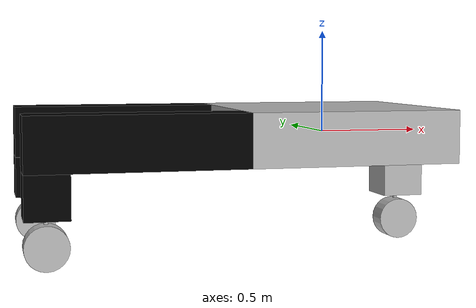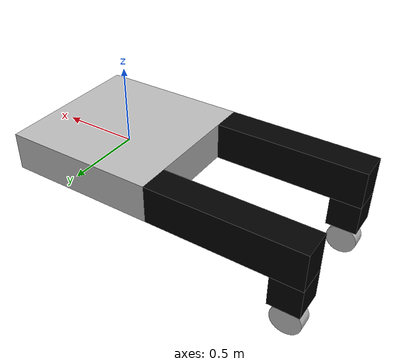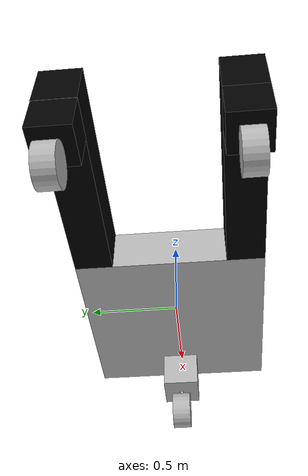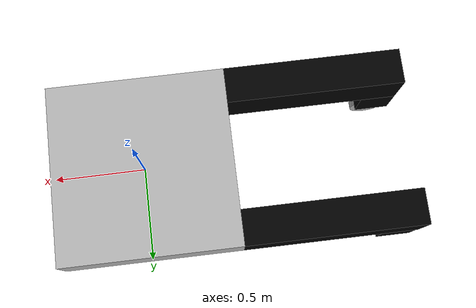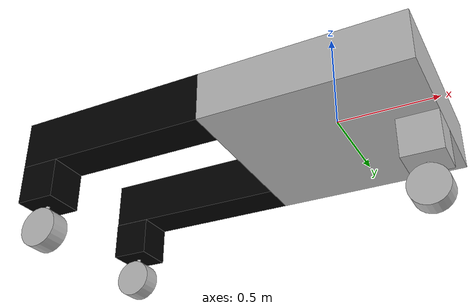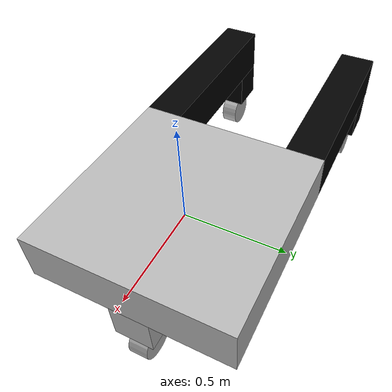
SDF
<?xml version='1.0'?>
<sdf version='1.6'>
  <model name='glide_robot'>
    <link name='link_0'>
      <inertial>
        <pose>0.266686 -9.7e-05 -0.187623 0 -0 0</pose>
        <mass>1.5</mass>
        <inertia>
          <ixx>0.508754</ixx>
          <ixy>1.97065e-05</ixy>
          <ixz>0.0375591</ixz>
          <iyy>0.562093</iyy>
          <iyz>-0.000183697</iyz>
          <izz>0.511676</izz>
        </inertia>
      </inertial>
      <self_collide>0</self_collide>
      <enable_wind>0</enable_wind>
      <kinematic>0</kinematic>
      <pose>0 0 0 0 -0 0</pose>
      <visual name='link_0_visual'>
        <pose>0 0 0 0 -0 0</pose>
        <geometry>
          <box>
            <size>1 1 0.25</size>
          </box>
        </geometry>
        <material>
          <shader type='pixel'/>
        </material>
        <transparency>0</transparency>
        <cast_shadows>1</cast_shadows>
      </visual>
      <visual name='link_0_fixed_joint_lump__link_1_clone_clone_clone_visual_1'>
        <pose>0.4 0 -0.225 0 -0 0</pose>
        <geometry>
          <box>
            <size>0.2 0.2 0.2</size>
          </box>
        </geometry>
        <material>
          <shader type='pixel'/>
        </material>
        <transparency>0</transparency>
        <cast_shadows>1</cast_shadows>
      </visual>
      <visual name='link_1_clone_visual_2'>
        <pose>0.400057 -0.000292 -0.33787 -0.007728 -0.001634 -0.023986</pose>
        <geometry>
          <cylinder>
            <length>0.025</length>
            <radius>0.01</radius>
          </cylinder>
        </geometry>
        <material>
          <shader type='pixel'/>
        </material>
        <transparency>0</transparency>
        <cast_shadows>1</cast_shadows>
      </visual>
      <collision name='link_0_collision'>
        <laser_retro>0</laser_retro>
        <max_contacts>10</max_contacts>
        <pose>0 0 0 0 -0 0</pose>
        <geometry>
          <box>
            <size>1 1 0.25</size>
          </box>
        </geometry>
        <surface>
          <friction>
            <ode>
              <mu>1</mu>
              <mu2>1</mu2>
              <fdir1>0 0 0</fdir1>
              <slip1>0</slip1>
              <slip2>0</slip2>
            </ode>
            <torsional>
              <coefficient>1</coefficient>
              <patch_radius>0</patch_radius>
              <surface_radius>0</surface_radius>
              <use_patch_radius>1</use_patch_radius>
              <ode>
                <slip>0</slip>
              </ode>
            </torsional>
          </friction>
          <bounce>
            <restitution_coefficient>0</restitution_coefficient>
            <threshold>1e+06</threshold>
          </bounce>
          <contact>
            <collide_without_contact>0</collide_without_contact>
            <collide_without_contact_bitmask>1</collide_without_contact_bitmask>
            <collide_bitmask>1</collide_bitmask>
            <ode>
              <soft_cfm>0</soft_cfm>
              <soft_erp>0.2</soft_erp>
              <kp>1e+13</kp>
              <kd>1</kd>
              <max_vel>0.01</max_vel>
              <min_depth>0</min_depth>
            </ode>
            <bullet>
              <split_impulse>1</split_impulse>
              <split_impulse_penetration_threshold>-0.01</split_impulse_penetration_threshold>
              <soft_cfm>0</soft_cfm>
              <soft_erp>0.2</soft_erp>
              <kp>1e+13</kp>
              <kd>1</kd>
            </bullet>
          </contact>
        </surface>
      </collision>
      <collision name='link_0_fixed_joint_lump__link_1_clone_clone_clone_collision_1'>
        <laser_retro>0</laser_retro>
        <max_contacts>10</max_contacts>
        <pose>0.4 0 -0.225 0 -0 0</pose>
        <geometry>
          <box>
            <size>0.2 0.2 0.2</size>
          </box>
        </geometry>
        <surface>
          <friction>
            <ode>
              <mu>1</mu>
              <mu2>1</mu2>
              <fdir1>0 0 0</fdir1>
              <slip1>0</slip1>
              <slip2>0</slip2>
            </ode>
            <torsional>
              <coefficient>1</coefficient>
              <patch_radius>0</patch_radius>
              <surface_radius>0</surface_radius>
              <use_patch_radius>1</use_patch_radius>
              <ode>
                <slip>0</slip>
              </ode>
            </torsional>
          </friction>
          <bounce>
            <restitution_coefficient>0</restitution_coefficient>
            <threshold>1e+06</threshold>
          </bounce>
          <contact>
            <collide_without_contact>0</collide_without_contact>
            <collide_without_contact_bitmask>1</collide_without_contact_bitmask>
            <collide_bitmask>1</collide_bitmask>
            <ode>
              <soft_cfm>0</soft_cfm>
              <soft_erp>0.2</soft_erp>
              <kp>1e+13</kp>
              <kd>1</kd>
              <max_vel>0.01</max_vel>
              <min_depth>0</min_depth>
            </ode>
            <bullet>
              <split_impulse>1</split_impulse>
              <split_impulse_penetration_threshold>-0.01</split_impulse_penetration_threshold>
              <soft_cfm>0</soft_cfm>
              <soft_erp>0.2</soft_erp>
              <kp>1e+13</kp>
              <kd>1</kd>
            </bullet>
          </contact>
        </surface>
      </collision>
      <collision name='link_1_clone_collision_2'>
        <laser_retro>0</laser_retro>
        <max_contacts>10</max_contacts>
        <pose>0.400057 -0.000292 -0.33787 -0.007728 -0.001634 -0.023986</pose>
        <geometry>
          <cylinder>
            <radius>0.01</radius>
            <length>0.025</length>
          </cylinder>
        </geometry>
        <surface>
          <friction>
            <ode>
              <mu>1</mu>
              <mu2>1</mu2>
              <fdir1>0 0 0</fdir1>
              <slip1>0</slip1>
              <slip2>0</slip2>
            </ode>
            <torsional>
              <coefficient>1</coefficient>
              <patch_radius>0</patch_radius>
              <surface_radius>0</surface_radius>
              <use_patch_radius>1</use_patch_radius>
              <ode>
                <slip>0</slip>
              </ode>
            </torsional>
          </friction>
          <bounce>
            <restitution_coefficient>0</restitution_coefficient>
            <threshold>1e+06</threshold>
          </bounce>
          <contact>
            <collide_without_contact>0</collide_without_contact>
            <collide_without_contact_bitmask>1</collide_without_contact_bitmask>
            <collide_bitmask>1</collide_bitmask>
            <ode>
              <soft_cfm>0</soft_cfm>
              <soft_erp>0.2</soft_erp>
              <kp>1e+13</kp>
              <kd>1</kd>
              <max_vel>0.01</max_vel>
              <min_depth>0</min_depth>
            </ode>
            <bullet>
              <split_impulse>1</split_impulse>
              <split_impulse_penetration_threshold>-0.01</split_impulse_penetration_threshold>
              <soft_cfm>0</soft_cfm>
              <soft_erp>0.2</soft_erp>
              <kp>1e+13</kp>
              <kd>1</kd>
            </bullet>
          </contact>
        </surface>
      </collision>
    </link>
    <link name='link_1'>
      <pose>-1.39995 -0.400292 -0.337839 -0.005156 -0.001069 -0.015992</pose>
      <inertial>
        <pose>0 0 0 0 -0 0</pose>
        <mass>0.5</mass>
        <inertia>
          <ixx>0.145833</ixx>
          <ixy>0</ixy>
          <ixz>0</ixz>
          <iyy>0.145833</iyy>
          <iyz>0</iyz>
          <izz>0.125</izz>
        </inertia>
      </inertial>
      <self_collide>0</self_collide>
      <enable_wind>0</enable_wind>
      <kinematic>0</kinematic>
      <visual name='link_1_visual'>
        <pose>0 0 0 0 -0 0</pose>
        <geometry>
          <cylinder>
            <length>0.025</length>
            <radius>0.01</radius>
          </cylinder>
        </geometry>
        <material>
          <shader type='pixel'/>
        </material>
        <transparency>0</transparency>
        <cast_shadows>1</cast_shadows>
      </visual>
      <collision name='link_1_collision'>
        <laser_retro>0</laser_retro>
        <max_contacts>10</max_contacts>
        <pose>0 0 0 0 -0 0</pose>
        <geometry>
          <cylinder>
            <radius>0.01</radius>
            <length>0.025</length>
          </cylinder>
        </geometry>
        <surface>
          <friction>
            <ode>
              <mu>1</mu>
              <mu2>1</mu2>
              <fdir1>0 0 0</fdir1>
              <slip1>0</slip1>
              <slip2>0</slip2>
            </ode>
            <torsional>
              <coefficient>1</coefficient>
              <patch_radius>0</patch_radius>
              <surface_radius>0</surface_radius>
              <use_patch_radius>1</use_patch_radius>
              <ode>
                <slip>0</slip>
              </ode>
            </torsional>
          </friction>
          <bounce>
            <restitution_coefficient>0</restitution_coefficient>
            <threshold>1e+06</threshold>
          </bounce>
          <contact>
            <collide_without_contact>0</collide_without_contact>
            <collide_without_contact_bitmask>1</collide_without_contact_bitmask>
            <collide_bitmask>1</collide_bitmask>
            <ode>
              <soft_cfm>0</soft_cfm>
              <soft_erp>0.2</soft_erp>
              <kp>1e+13</kp>
              <kd>1</kd>
              <max_vel>0.01</max_vel>
              <min_depth>0</min_depth>
            </ode>
            <bullet>
              <split_impulse>1</split_impulse>
              <split_impulse_penetration_threshold>-0.01</split_impulse_penetration_threshold>
              <soft_cfm>0</soft_cfm>
              <soft_erp>0.2</soft_erp>
              <kp>1e+13</kp>
              <kd>1</kd>
            </bullet>
          </contact>
        </surface>
      </collision>
    </link>
    <link name='link_2'>
      <pose>-1.39994 0.397228 -0.339814 -0.005156 -0.001069 -0.015992</pose>
      <inertial>
        <pose>0 0 0 0 -0 0</pose>
        <mass>0.5</mass>
        <inertia>
          <ixx>0.145833</ixx>
          <ixy>0</ixy>
          <ixz>0</ixz>
          <iyy>0.145833</iyy>
          <iyz>0</iyz>
          <izz>0.125</izz>
        </inertia>
      </inertial>
      <self_collide>0</self_collide>
      <enable_wind>0</enable_wind>
      <kinematic>0</kinematic>
      <visual name='link_2_visual'>
        <pose>0 0 0 0 -0 0</pose>
        <geometry>
          <cylinder>
            <length>0.025</length>
            <radius>0.01</radius>
          </cylinder>
        </geometry>
        <material>
          <shader type='pixel'/>
        </material>
        <transparency>0</transparency>
        <cast_shadows>1</cast_shadows>
      </visual>
      <collision name='link_2_collision'>
        <laser_retro>0</laser_retro>
        <max_contacts>10</max_contacts>
        <pose>0 0 0 0 -0 0</pose>
        <geometry>
          <cylinder>
            <radius>0.01</radius>
            <length>0.025</length>
          </cylinder>
        </geometry>
        <surface>
          <friction>
            <ode>
              <mu>1</mu>
              <mu2>1</mu2>
              <fdir1>0 0 0</fdir1>
              <slip1>0</slip1>
              <slip2>0</slip2>
            </ode>
            <torsional>
              <coefficient>1</coefficient>
              <patch_radius>0</patch_radius>
              <surface_radius>0</surface_radius>
              <use_patch_radius>1</use_patch_radius>
              <ode>
                <slip>0</slip>
              </ode>
            </torsional>
          </friction>
          <bounce>
            <restitution_coefficient>0</restitution_coefficient>
            <threshold>1e+06</threshold>
          </bounce>
          <contact>
            <collide_without_contact>0</collide_without_contact>
            <collide_without_contact_bitmask>1</collide_without_contact_bitmask>
            <collide_bitmask>1</collide_bitmask>
            <ode>
              <soft_cfm>0</soft_cfm>
              <soft_erp>0.2</soft_erp>
              <kp>1e+13</kp>
              <kd>1</kd>
              <max_vel>0.01</max_vel>
              <min_depth>0</min_depth>
            </ode>
            <bullet>
              <split_impulse>1</split_impulse>
              <split_impulse_penetration_threshold>-0.01</split_impulse_penetration_threshold>
              <soft_cfm>0</soft_cfm>
              <soft_erp>0.2</soft_erp>
              <kp>1e+13</kp>
              <kd>1</kd>
            </bullet>
          </contact>
        </surface>
      </collision>
    </link>
    <link name='link_3'>
      <pose>-0.5 0.4 0 0 -0 0</pose>
      <inertial>
        <pose>-0.45 -0.00124 -0.113487 0 -0 0</pose>
        <mass>1</mass>
        <inertia>
          <ixx>0.346215</ixx>
          <ixy>0</ixy>
          <ixz>0</ixz>
          <iyy>0.548713</iyy>
          <iyz>0</iyz>
          <izz>0.535836</izz>
        </inertia>
      </inertial>
      <self_collide>0</self_collide>
      <enable_wind>0</enable_wind>
      <kinematic>0</kinematic>
      <gravity>1</gravity>
      <visual name='link_3_fixed_joint_lump__link_1_clone_clone_visual_1'>
        <pose>-0.9 -0.00248 -0.226975 0 -0 0</pose>
        <geometry>
          <box>
            <size>0.2 0.2 0.2</size>
          </box>
        </geometry>
        <material>
          <shader type='pixel'>
            <normal_map>__default__</normal_map>
          </shader>
          <script>
            <name>ModelPreview_5::link_3::link_3_fixed_joint_lump__link_1_clone_clone_visual_1_MATERIAL_</name>
          </script>
          <ambient>0 0 0 1</ambient>
          <diffuse>0 0 0 1</diffuse>
          <specular>0 0 0 1</specular>
          <emissive>0 0 0 1</emissive>
        </material>
        <transparency>0</transparency>
        <cast_shadows>1</cast_shadows>
      </visual>
      <visual name='link_3_visual'>
        <pose>-0.5 0 0 0 -0 0</pose>
        <geometry>
          <box>
            <size>1 0.2 0.25</size>
          </box>
        </geometry>
        <material>
          <shader type='pixel'>
            <normal_map>__default__</normal_map>
          </shader>
          <script>
            <name>ModelPreview_5::link_3::link_3_visual_MATERIAL_</name>
          </script>
          <ambient>0 0 0 1</ambient>
          <diffuse>0 0 0 1</diffuse>
          <specular>0 0 0 1</specular>
          <emissive>0 0 0 1</emissive>
        </material>
        <transparency>0</transparency>
        <cast_shadows>1</cast_shadows>
      </visual>
      <collision name='link_3_collision'>
        <laser_retro>0</laser_retro>
        <max_contacts>10</max_contacts>
        <pose>-0.5 0 0 0 -0 0</pose>
        <geometry>
          <box>
            <size>0.95 0.2 0.25</size>
          </box>
        </geometry>
        <surface>
          <friction>
            <ode>
              <mu>1</mu>
              <mu2>1</mu2>
              <fdir1>0 0 0</fdir1>
              <slip1>0</slip1>
              <slip2>0</slip2>
            </ode>
            <torsional>
              <coefficient>1</coefficient>
              <patch_radius>0</patch_radius>
              <surface_radius>0</surface_radius>
              <use_patch_radius>1</use_patch_radius>
              <ode>
                <slip>0</slip>
              </ode>
            </torsional>
          </friction>
          <bounce>
            <restitution_coefficient>0</restitution_coefficient>
            <threshold>1e+06</threshold>
          </bounce>
          <contact>
            <collide_without_contact>0</collide_without_contact>
            <collide_without_contact_bitmask>1</collide_without_contact_bitmask>
            <collide_bitmask>1</collide_bitmask>
            <ode>
              <soft_cfm>0</soft_cfm>
              <soft_erp>0.2</soft_erp>
              <kp>1e+13</kp>
              <kd>1</kd>
              <max_vel>0.01</max_vel>
              <min_depth>0</min_depth>
            </ode>
            <bullet>
              <split_impulse>1</split_impulse>
              <split_impulse_penetration_threshold>-0.01</split_impulse_penetration_threshold>
              <soft_cfm>0</soft_cfm>
              <soft_erp>0.2</soft_erp>
              <kp>1e+13</kp>
              <kd>1</kd>
            </bullet>
          </contact>
        </surface>
      </collision>
      <collision name='link_3_fixed_joint_lump__link_1_clone_clone_collision_1'>
        <laser_retro>0</laser_retro>
        <max_contacts>10</max_contacts>
        <pose>-0.9 -0.00248 -0.226975 0 -0 0</pose>
        <geometry>
          <box>
            <size>0.2 0.2 0.2</size>
          </box>
        </geometry>
        <surface>
          <friction>
            <ode>
              <mu>1</mu>
              <mu2>1</mu2>
              <fdir1>0 0 0</fdir1>
              <slip1>0</slip1>
              <slip2>0</slip2>
            </ode>
            <torsional>
              <coefficient>1</coefficient>
              <patch_radius>0</patch_radius>
              <surface_radius>0</surface_radius>
              <use_patch_radius>1</use_patch_radius>
              <ode>
                <slip>0</slip>
              </ode>
            </torsional>
          </friction>
          <bounce>
            <restitution_coefficient>0</restitution_coefficient>
            <threshold>1e+06</threshold>
          </bounce>
          <contact>
            <collide_without_contact>0</collide_without_contact>
            <collide_without_contact_bitmask>1</collide_without_contact_bitmask>
            <collide_bitmask>1</collide_bitmask>
            <ode>
              <soft_cfm>0</soft_cfm>
              <soft_erp>0.2</soft_erp>
              <kp>1e+13</kp>
              <kd>1</kd>
              <max_vel>0.01</max_vel>
              <min_depth>0</min_depth>
            </ode>
            <bullet>
              <split_impulse>1</split_impulse>
              <split_impulse_penetration_threshold>-0.01</split_impulse_penetration_threshold>
              <soft_cfm>0</soft_cfm>
              <soft_erp>0.2</soft_erp>
              <kp>1e+13</kp>
              <kd>1</kd>
            </bullet>
          </contact>
        </surface>
      </collision>
    </link>
    <link name='link_4'>
      <pose>-0.5 -0.4 -0 0 -0 0</pose>
      <inertial>
        <pose>-0.450002 0 -0.1125 0 -0 0</pose>
        <mass>1</mass>
        <inertia>
          <ixx>0.34599</ixx>
          <ixy>-0</ixy>
          <ixz>0</ixz>
          <iyy>0.548492</iyy>
          <iyz>-0</iyz>
          <izz>0.535836</izz>
        </inertia>
      </inertial>
      <self_collide>0</self_collide>
      <enable_wind>0</enable_wind>
      <kinematic>0</kinematic>
      <gravity>1</gravity>
      <visual name='link_4_fixed_joint_lump__link_1_clone_visual_1'>
        <pose>-0.900004 0 -0.225 0 -0 0</pose>
        <geometry>
          <box>
            <size>0.2 0.2 0.2</size>
          </box>
        </geometry>
        <material>
          <shader type='pixel'>
            <normal_map>__default__</normal_map>
          </shader>
          <script>
            <name>ModelPreview_5::link_4::link_4_fixed_joint_lump__link_1_clone_visual_1_MATERIAL_</name>
          </script>
          <ambient>0 0 0 1</ambient>
          <diffuse>0 0 0 1</diffuse>
          <specular>0 0 0 1</specular>
          <emissive>0 0 0 1</emissive>
        </material>
        <transparency>0</transparency>
        <cast_shadows>1</cast_shadows>
      </visual>
      <visual name='link_4_visual'>
        <pose>-0.5 0 0 0 -0 0</pose>
        <geometry>
          <box>
            <size>1 0.2 0.25</size>
          </box>
        </geometry>
        <material>
          <shader type='pixel'>
            <normal_map>__default__</normal_map>
          </shader>
          <script>
            <name>ModelPreview_5::link_4::link_4_visual_MATERIAL_</name>
          </script>
          <ambient>0 0 0 1</ambient>
          <diffuse>0 0 0 1</diffuse>
          <specular>0 0 0 1</specular>
          <emissive>0 0 0 1</emissive>
        </material>
        <transparency>0</transparency>
        <cast_shadows>1</cast_shadows>
      </visual>
      <collision name='link_4_collision'>
        <laser_retro>0</laser_retro>
        <max_contacts>10</max_contacts>
        <pose>-0.5 0 0 0 -0 0</pose>
        <geometry>
          <box>
            <size>0.95 0.2 0.25</size>
          </box>
        </geometry>
        <surface>
          <friction>
            <ode>
              <mu>1</mu>
              <mu2>1</mu2>
              <fdir1>0 0 0</fdir1>
              <slip1>0</slip1>
              <slip2>0</slip2>
            </ode>
            <torsional>
              <coefficient>1</coefficient>
              <patch_radius>0</patch_radius>
              <surface_radius>0</surface_radius>
              <use_patch_radius>1</use_patch_radius>
              <ode>
                <slip>0</slip>
              </ode>
            </torsional>
          </friction>
          <bounce>
            <restitution_coefficient>0</restitution_coefficient>
            <threshold>1e+06</threshold>
          </bounce>
          <contact>
            <collide_without_contact>0</collide_without_contact>
            <collide_without_contact_bitmask>1</collide_without_contact_bitmask>
            <collide_bitmask>1</collide_bitmask>
            <ode>
              <soft_cfm>0</soft_cfm>
              <soft_erp>0.2</soft_erp>
              <kp>1e+13</kp>
              <kd>1</kd>
              <max_vel>0.01</max_vel>
              <min_depth>0</min_depth>
            </ode>
            <bullet>
              <split_impulse>1</split_impulse>
              <split_impulse_penetration_threshold>-0.01</split_impulse_penetration_threshold>
              <soft_cfm>0</soft_cfm>
              <soft_erp>0.2</soft_erp>
              <kp>1e+13</kp>
              <kd>1</kd>
            </bullet>
          </contact>
        </surface>
      </collision>
      <collision name='link_4_fixed_joint_lump__link_1_clone_collision_1'>
        <laser_retro>0</laser_retro>
        <max_contacts>10</max_contacts>
        <pose>-0.900004 0 -0.225 0 -0 0</pose>
        <geometry>
          <box>
            <size>0.2 0.2 0.2</size>
          </box>
        </geometry>
        <surface>
          <friction>
            <ode>
              <mu>1</mu>
              <mu2>1</mu2>
              <fdir1>0 0 0</fdir1>
              <slip1>0</slip1>
              <slip2>0</slip2>
            </ode>
            <torsional>
              <coefficient>1</coefficient>
              <patch_radius>0</patch_radius>
              <surface_radius>0</surface_radius>
              <use_patch_radius>1</use_patch_radius>
              <ode>
                <slip>0</slip>
              </ode>
            </torsional>
          </friction>
          <bounce>
            <restitution_coefficient>0</restitution_coefficient>
            <threshold>1e+06</threshold>
          </bounce>
          <contact>
            <collide_without_contact>0</collide_without_contact>
            <collide_without_contact_bitmask>1</collide_without_contact_bitmask>
            <collide_bitmask>1</collide_bitmask>
            <ode>
              <soft_cfm>0</soft_cfm>
              <soft_erp>0.2</soft_erp>
              <kp>1e+13</kp>
              <kd>1</kd>
              <max_vel>0.01</max_vel>
              <min_depth>0</min_depth>
            </ode>
            <bullet>
              <split_impulse>1</split_impulse>
              <split_impulse_penetration_threshold>-0.01</split_impulse_penetration_threshold>
              <soft_cfm>0</soft_cfm>
              <soft_erp>0.2</soft_erp>
              <kp>1e+13</kp>
              <kd>1</kd>
            </bullet>
          </contact>
        </surface>
      </collision>
    </link>
    <link name='link_5'>
      <pose>-1.39989 -0.400583 -0.450554 0 -0 0</pose>
      <inertial>
        <pose>0 0 0 0 -0 0</pose>
        <mass>0.5</mass>
        <inertia>
          <ixx>0.145833</ixx>
          <ixy>0</ixy>
          <ixz>0</ixz>
          <iyy>0.145833</iyy>
          <iyz>0</iyz>
          <izz>0.125</izz>
        </inertia>
      </inertial>
      <self_collide>0</self_collide>
      <enable_wind>0</enable_wind>
      <kinematic>0</kinematic>
      <visual name='link_5_visual'>
        <pose>0 0 0 1.5708 -0 0</pose>
        <geometry>
          <cylinder>
            <length>0.1</length>
            <radius>0.1</radius>
          </cylinder>
        </geometry>
        <material>
          <shader type='pixel'/>
        </material>
        <transparency>0</transparency>
        <cast_shadows>1</cast_shadows>
      </visual>
      <collision name='link_5_collision'>
        <laser_retro>0</laser_retro>
        <max_contacts>10</max_contacts>
        <pose>0 0 0 1.5708 -0 0</pose>
        <geometry>
          <cylinder>
            <radius>0.1</radius>
            <length>0.1</length>
          </cylinder>
        </geometry>
        <surface>
          <friction>
            <ode>
              <mu>1</mu>
              <mu2>1</mu2>
              <fdir1>0 0 0</fdir1>
              <slip1>0</slip1>
              <slip2>0</slip2>
            </ode>
            <torsional>
              <coefficient>1</coefficient>
              <patch_radius>0</patch_radius>
              <surface_radius>0</surface_radius>
              <use_patch_radius>1</use_patch_radius>
              <ode>
                <slip>0</slip>
              </ode>
            </torsional>
          </friction>
          <bounce>
            <restitution_coefficient>0</restitution_coefficient>
            <threshold>1e+06</threshold>
          </bounce>
          <contact>
            <collide_without_contact>0</collide_without_contact>
            <collide_without_contact_bitmask>1</collide_without_contact_bitmask>
            <collide_bitmask>1</collide_bitmask>
            <ode>
              <soft_cfm>0</soft_cfm>
              <soft_erp>0.2</soft_erp>
              <kp>1e+13</kp>
              <kd>1</kd>
              <max_vel>0.01</max_vel>
              <min_depth>0</min_depth>
            </ode>
            <bullet>
              <split_impulse>1</split_impulse>
              <split_impulse_penetration_threshold>-0.01</split_impulse_penetration_threshold>
              <soft_cfm>0</soft_cfm>
              <soft_erp>0.2</soft_erp>
              <kp>1e+13</kp>
              <kd>1</kd>
            </bullet>
          </contact>
        </surface>
      </collision>
    </link>
    <link name='link_6'>
      <pose>0.400113 -0.000583 -0.450616 0 -0 0</pose>
      <inertial>
        <pose>0 0 0 0 -0 0</pose>
        <mass>0.5</mass>
        <inertia>
          <ixx>0.145833</ixx>
          <ixy>0</ixy>
          <ixz>0</ixz>
          <iyy>0.145833</iyy>
          <iyz>0</iyz>
          <izz>0.125</izz>
        </inertia>
      </inertial>
      <self_collide>0</self_collide>
      <enable_wind>0</enable_wind>
      <kinematic>0</kinematic>
      <visual name='link_6_visual'>
        <pose>0 0 0 1.5708 -0 0</pose>
        <geometry>
          <cylinder>
            <length>0.1</length>
            <radius>0.1</radius>
          </cylinder>
        </geometry>
        <material>
          <shader type='pixel'/>
        </material>
        <transparency>0</transparency>
        <cast_shadows>1</cast_shadows>
      </visual>
      <collision name='link_6_collision'>
        <laser_retro>0</laser_retro>
        <max_contacts>10</max_contacts>
        <pose>0 0 0 1.5708 -0 0</pose>
        <geometry>
          <cylinder>
            <radius>0.1</radius>
            <length>0.1</length>
          </cylinder>
        </geometry>
        <surface>
          <friction>
            <ode>
              <mu>1</mu>
              <mu2>1</mu2>
              <fdir1>0 0 0</fdir1>
              <slip1>0</slip1>
              <slip2>0</slip2>
            </ode>
            <torsional>
              <coefficient>1</coefficient>
              <patch_radius>0</patch_radius>
              <surface_radius>0</surface_radius>
              <use_patch_radius>1</use_patch_radius>
              <ode>
                <slip>0</slip>
              </ode>
            </torsional>
          </friction>
          <bounce>
            <restitution_coefficient>0</restitution_coefficient>
            <threshold>1e+06</threshold>
          </bounce>
          <contact>
            <collide_without_contact>0</collide_without_contact>
            <collide_without_contact_bitmask>1</collide_without_contact_bitmask>
            <collide_bitmask>1</collide_bitmask>
            <ode>
              <soft_cfm>0</soft_cfm>
              <soft_erp>0.2</soft_erp>
              <kp>1e+13</kp>
              <kd>1</kd>
              <max_vel>0.01</max_vel>
              <min_depth>0</min_depth>
            </ode>
            <bullet>
              <split_impulse>1</split_impulse>
              <split_impulse_penetration_threshold>-0.01</split_impulse_penetration_threshold>
              <soft_cfm>0</soft_cfm>
              <soft_erp>0.2</soft_erp>
              <kp>1e+13</kp>
              <kd>1</kd>
            </bullet>
          </contact>
        </surface>
      </collision>
    </link>
    <link name='link_7'>
      <pose>-1.39989 0.396937 -0.452529 0 -0 0</pose>
      <inertial>
        <pose>0 0 0 0 -0 0</pose>
        <mass>0.5</mass>
        <inertia>
          <ixx>0.145833</ixx>
          <ixy>0</ixy>
          <ixz>0</ixz>
          <iyy>0.145833</iyy>
          <iyz>0</iyz>
          <izz>0.125</izz>
        </inertia>
      </inertial>
      <self_collide>0</self_collide>
      <enable_wind>0</enable_wind>
      <kinematic>0</kinematic>
      <visual name='link_7_visual'>
        <pose>0 0 0 1.5708 -0 0</pose>
        <geometry>
          <cylinder>
            <length>0.1</length>
            <radius>0.1</radius>
          </cylinder>
        </geometry>
        <material>
          <shader type='pixel'/>
        </material>
        <transparency>0</transparency>
        <cast_shadows>1</cast_shadows>
      </visual>
      <collision name='link_7_collision'>
        <laser_retro>0</laser_retro>
        <max_contacts>10</max_contacts>
        <pose>0 0 0 1.5708 -0 0</pose>
        <geometry>
          <cylinder>
            <radius>0.1</radius>
            <length>0.1</length>
          </cylinder>
        </geometry>
        <surface>
          <friction>
            <ode>
              <mu>1</mu>
              <mu2>1</mu2>
              <fdir1>0 0 0</fdir1>
              <slip1>0</slip1>
              <slip2>0</slip2>
            </ode>
            <torsional>
              <coefficient>1</coefficient>
              <patch_radius>0</patch_radius>
              <surface_radius>0</surface_radius>
              <use_patch_radius>1</use_patch_radius>
              <ode>
                <slip>0</slip>
              </ode>
            </torsional>
          </friction>
          <bounce>
            <restitution_coefficient>0</restitution_coefficient>
            <threshold>1e+06</threshold>
          </bounce>
          <contact>
            <collide_without_contact>0</collide_without_contact>
            <collide_without_contact_bitmask>1</collide_without_contact_bitmask>
            <collide_bitmask>1</collide_bitmask>
            <ode>
              <soft_cfm>0</soft_cfm>
              <soft_erp>0.2</soft_erp>
              <kp>1e+13</kp>
              <kd>1</kd>
              <max_vel>0.01</max_vel>
              <min_depth>0</min_depth>
            </ode>
            <bullet>
              <split_impulse>1</split_impulse>
              <split_impulse_penetration_threshold>-0.01</split_impulse_penetration_threshold>
              <soft_cfm>0</soft_cfm>
              <soft_erp>0.2</soft_erp>
              <kp>1e+13</kp>
              <kd>1</kd>
            </bullet>
          </contact>
        </surface>
      </collision>
    </link>

    <joint name='joint1' type='revolute'>
      <parent>link_0</parent>
      <child>link_3</child>
      <pose>0 0 0 0 -0 0</pose>
      <axis>
        <xyz>0 0 1</xyz>
        <limit>
          <lower>-1</lower>
          <upper>0</upper>
          <effort>100</effort>
          <velocity>inf</velocity>
        </limit>
        <dynamics>
          <spring_reference>0</spring_reference>
          <spring_stiffness>0</spring_stiffness>
          <damping>0</damping>
          <friction>0</friction>
        </dynamics>
      </axis>
      <physics>
        <ode>
          <limit>
            <cfm>0</cfm>
            <erp>0.2</erp>
          </limit>
          <suspension>
            <cfm>0</cfm>
            <erp>0.2</erp>
          </suspension>
        </ode>
      </physics>
    </joint>
    <joint name='joint2' type='revolute'>
      <parent>link_0</parent>
      <child>link_4</child>
      <pose>0 0 0 0 -0 0</pose>
      <axis>
        <xyz>0 0 1</xyz>
        <limit>
          <lower>0</lower>
          <upper>1</upper>
          <effort>100</effort>
          <velocity>inf</velocity>
        </limit>
        <dynamics>
          <spring_reference>0</spring_reference>
          <spring_stiffness>0</spring_stiffness>
          <damping>0</damping>
          <friction>0</friction>
        </dynamics>
      </axis>
      <physics>
        <ode>
          <limit>
            <cfm>0</cfm>
            <erp>0.2</erp>
          </limit>
          <suspension>
            <cfm>0</cfm>
            <erp>0.2</erp>
          </suspension>
        </ode>
      </physics>
    </joint>
    <joint name='joint3' type='revolute'>
      <parent>link_3</parent>
      <child>link_2</child>
      <pose>-0 -0 0 0 -0 0</pose>
      <axis>
        <xyz>0.001069 -0.005156 0.999986</xyz>
        <limit>
          <lower>-1</lower>
          <upper>1</upper>
          <effort>100</effort>
          <velocity>inf</velocity>
        </limit>
        <dynamics>
          <spring_reference>0</spring_reference>
          <spring_stiffness>0</spring_stiffness>
          <damping>0</damping>
          <friction>0</friction>
        </dynamics>
      </axis>
      <physics>
        <ode>
          <limit>
            <cfm>0</cfm>
            <erp>0.2</erp>
          </limit>
          <suspension>
            <cfm>0</cfm>
            <erp>0.2</erp>
          </suspension>
        </ode>
      </physics>
    </joint>
    <joint name='joint4' type='revolute'>
      <parent>link_4</parent>
      <child>link_1</child>
      <pose>-0 0 -0 0 -0 0</pose>
      <axis>
        <xyz>0.001069 -0.005156 0.999986</xyz>
        <limit>
          <lower>-1</lower>
          <upper>1</upper>
          <effort>100</effort>
          <velocity>inf</velocity>
        </limit>
        <dynamics>
          <spring_reference>0</spring_reference>
          <spring_stiffness>0</spring_stiffness>
          <damping>0</damping>
          <friction>0</friction>
        </dynamics>
      </axis>
      <physics>
        <ode>
          <limit>
            <cfm>0</cfm>
            <erp>0.2</erp>
          </limit>
          <suspension>
            <cfm>0</cfm>
            <erp>0.2</erp>
          </suspension>
        </ode>
      </physics>
    </joint>
    <joint name='wheel1' type='revolute'>
      <parent>link_1</parent>
      <child>link_5</child>
      <pose>0 -0 0 0 -0 0</pose>
      <axis>
        <xyz>0 1 0</xyz>
        <limit>
          <lower>-1.79769e+308</lower>
          <upper>1.79769e+308</upper>
          <effort>100</effort>
          <velocity>inf</velocity>
        </limit>
        <dynamics>
          <spring_reference>0</spring_reference>
          <spring_stiffness>0</spring_stiffness>
          <damping>0</damping>
          <friction>0</friction>
        </dynamics>
      </axis>
      <physics>
        <ode>
          <limit>
            <cfm>0</cfm>
            <erp>0.2</erp>
          </limit>
          <suspension>
            <cfm>0</cfm>
            <erp>0.2</erp>
          </suspension>
        </ode>
      </physics>
    </joint>
    <joint name='wheel2' type='revolute'>
      <parent>link_2</parent>
      <child>link_7</child>
      <pose>-0 0 0 0 -0 0</pose>
      <axis>
        <xyz>0 1 0</xyz>
        <limit>
          <lower>-1.79769e+308</lower>
          <upper>1.79769e+308</upper>
          <effort>100</effort>
          <velocity>inf</velocity>
        </limit>
        <dynamics>
          <spring_reference>0</spring_reference>
          <spring_stiffness>0</spring_stiffness>
          <damping>0</damping>
          <friction>0</friction>
        </dynamics>
      </axis>
      <physics>
        <ode>
          <limit>
            <cfm>0</cfm>
            <erp>0.2</erp>
          </limit>
          <suspension>
            <cfm>0</cfm>
            <erp>0.2</erp>
          </suspension>
        </ode>
      </physics>
    </joint>
    <joint name='wheel3' type='revolute'>
      <parent>link_0</parent>
      <child>link_6</child>
      <pose>0 0 0 0 -0 0</pose>
      <axis>
        <xyz>0 1 0</xyz>
        <limit>
          <lower>-1.79769e+308</lower>
          <upper>1.79769e+308</upper>
          <effort>100</effort>
          <velocity>inf</velocity>
        </limit>
        <dynamics>
          <spring_reference>0</spring_reference>
          <spring_stiffness>0</spring_stiffness>
          <damping>0</damping>
          <friction>0</friction>
        </dynamics>
      </axis>
      <physics>
        <ode>
          <limit>
            <cfm>0</cfm>
            <erp>0.2</erp>
          </limit>
          <suspension>
            <cfm>0</cfm>
            <erp>0.2</erp>
          </suspension>
        </ode>
      </physics>
    </joint>
    <static>0</static>
    <allow_auto_disable>1</allow_auto_disable>
  </model>
</sdf>
